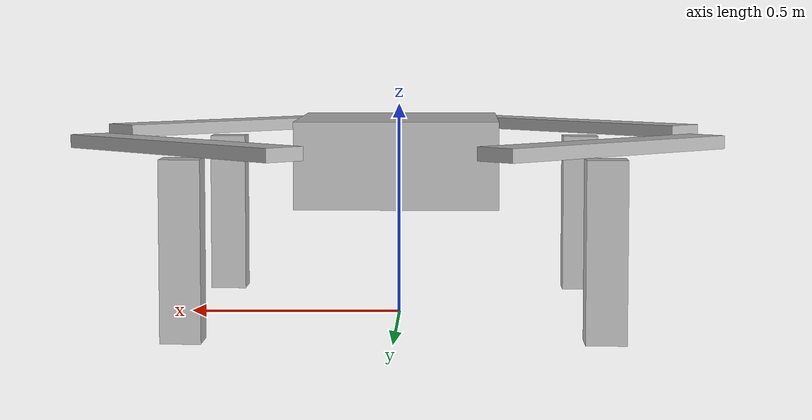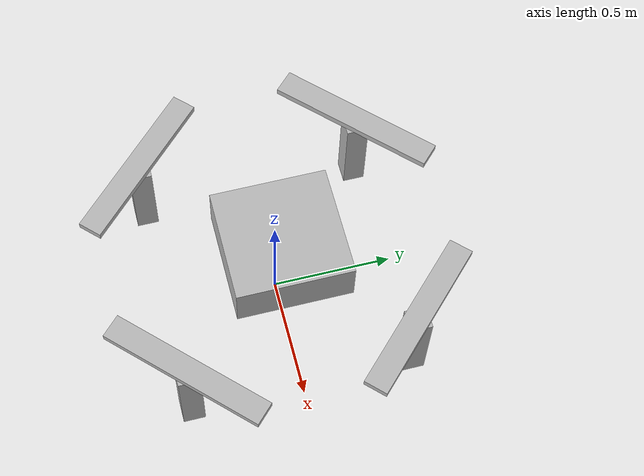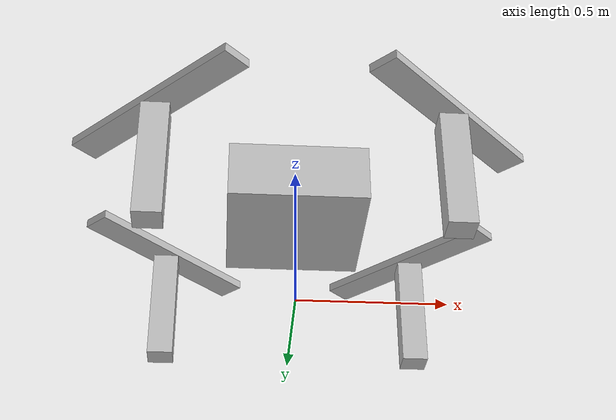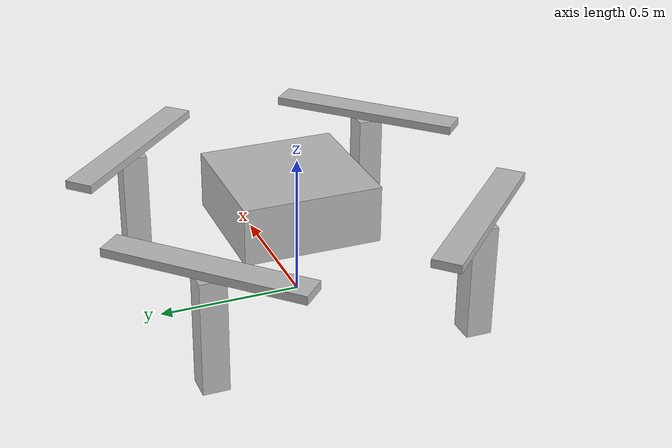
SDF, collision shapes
<?xml version="1.0"?>
<sdf version="1.6">
  <model name="edrone">
    <static>0</static>

<!-- ***************************** Links *********************************** -->

    <link name="base_frame">
      <visual name="visual">
        <geometry>
          <mesh><uri>model://edrone/meshes/edrone.obj</uri></mesh>
        </geometry>
      </visual>
      <collision name="base_collision">
        <pose>0 0.028 0.37 0 0 0</pose><geometry><box><size>0.466 0.48 0.2</size></box></geometry>
      </collision>
      <collision name="stand_1">
      	<pose>0.46 0.46 0.2 0 0 0</pose> <geometry><box><size>0.09 0.09 0.4</size></box> </geometry>
      </collision>
      <collision name="stand_2">
      	<pose>0.46 -0.46 0.2 0 0 0</pose> <geometry><box><size>0.09 0.09 0.4</size></box> </geometry>
      </collision>
      <collision name="stand_3">
      	<pose>-0.46 -0.46 0.2 0 0 0</pose> <geometry><box><size>0.09 0.09 0.4</size></box> </geometry>
      </collision>
      <collision name="stand_4">
      	<pose>-0.46 0.46 0.2 0 0 0</pose> <geometry><box><size>0.09 0.09 0.4</size></box> </geometry>
      </collision>
      <inertial>
        <mass>1</mass>
        <inertia>
          <ixx>0.08666</ixx><ixy>0</ixy><ixz>0</ixz><iyy>0.08666</iyy><iyz>0</iyz><izz>0.16666</izz>
        </inertia>
        <pose>0 0 0.35 0 0 0</pose>
      </inertial>
      <sensor type="camera" name="camera">
        <pose>0 0.35 0.38 0 1.5707 1.5707</pose>
        <update_rate>30.0</update_rate>
        <camera name="head">
          <horizontal_fov>1.3962634</horizontal_fov>
          <image>
            <width>400</width>
            <height>400</height>
            <format>R8G8B8</format>
          </image>
          <clip>
            <near>0.40</near>
            <far>300</far>
          </clip>
        </camera>
        <plugin name="camera_plugin" filename="libgazebo_ros_camera.so">
          <alwaysOn>true</alwaysOn>
          <updateRate>30.0</updateRate>
          <cameraName>camera</cameraName>
          <imageTopicName>image_raw</imageTopicName>
          <cameraInfoTopicName>camera_info</cameraInfoTopicName>
          <frameName>camera_link</frameName>
          <hackBaseline>0.07</hackBaseline>
          <distortionK1>0.0</distortionK1>
          <distortionK2>0.0</distortionK2>
          <distortionK3>0.0</distortionK3>
          <distortionT1>0.0</distortionT1>
          <distortionT2>0.0</distortionT2>
          <robotNamespace>edrone</robotNamespace>
          <tf_prefix_>edrone</tf_prefix_>
        </plugin>
        <visualize>false</visualize>
      </sensor>
      <sensor name="range_finder_top" type="ray">
        <pose>0 0 0.5 3.1415 0 -1.57</pose>
        <ray>
          <scan>
            <horizontal>
              <samples>5</samples>
              <resolution>1</resolution>
              <min_angle>-3.1415</min_angle>
              <max_angle>3.1415</max_angle>
            </horizontal>
          </scan>
          <range>
            <min>0.06</min>
            <max>25</max>
            <resolution>0.01</resolution>
          </range>
          <noise>
            <type>gaussian</type>
            <mean>0.0</mean>
            <stddev>0.01</stddev>
          </noise>
        </ray>
        <plugin name="lidar_plugin" filename="libgazebo_ros_laser.so">
          <robotNamespace>edrone</robotNamespace>
          <topicName>range_finder_top</topicName>
          <tf_prefix_>edrone</tf_prefix_>
          <frameName>/world</frameName>
        </plugin>
        <always_on>1</always_on>
        <update_rate>20</update_rate>
        <visualize>false</visualize>
      </sensor>
      <sensor name="range_finder_bottom" type="ray">
        <pose>0 0.46 0.38 0 1.5707 1.5707</pose>
        <ray>
          <scan>
            <horizontal>
              <samples>1</samples>
              <resolution>1</resolution>
              <min_angle>-0</min_angle>
              <max_angle>0</max_angle>
            </horizontal>
          </scan>
          <range>
            <min>0.06</min>
            <max>150</max>
            <resolution>0.01</resolution>
          </range>
          <noise>
            <type>gaussian</type>
            <mean>0.0</mean>
            <stddev>0.01</stddev>
          </noise>
        </ray>
        <plugin name="lidar_plugin" filename="libgazebo_ros_laser.so">
          <robotNamespace>edrone</robotNamespace>
          <topicName>range_finder_bottom</topicName>
          <tf_prefix_>edrone</tf_prefix_>
          <frameName>/world</frameName>
        </plugin>
        <always_on>1</always_on>
        <update_rate>20</update_rate>
        <visualize>false</visualize>
      </sensor>
    </link>

    <link name="prop1">
    	<pose>0.46 0.46 0.41  0 0 -0.785398</pose>
    	<inertial>
        <mass>0.1</mass>
        <inertia><ixx>0.00001</ixx><ixy>0</ixy><ixz>0</ixz><iyy>0.001</iyy><iyz>0</iyz><izz>0.001</izz></inertia>
        <pose>0 0 0.015 0 0 0</pose>
      </inertial>
      <visual name="visual">
        <geometry>
          <mesh><uri>model://edrone/meshes/prop_ccw.dae</uri></mesh>
        </geometry>
      </visual>
      <collision name="collision">
        <pose>0 0 0.015 0 0 0</pose>
        <geometry>
          <box><size>0.696 0.1 0.03</size></box>
        </geometry>
      </collision>
    </link>

    <link name="prop2">
    	<pose>0.46 -0.46 0.41  0 0 0.785398</pose>
    	<inertial>
        <mass>0.1</mass>
        <inertia><ixx>0.00001</ixx><ixy>0</ixy><ixz>0</ixz><iyy>0.001</iyy><iyz>0</iyz><izz>0.001</izz></inertia>
        <pose>0 0 0.015 0 0 0</pose>
      </inertial>
      <visual name="visual">
        <geometry>
          <mesh><uri>model://edrone/meshes/prop.dae</uri></mesh>
        </geometry>
      </visual>
      <collision name="collision">
        <pose>0 0 0.015 0 0 0</pose>
        <geometry>
          <box><size>0.696 0.1 0.03</size></box>
        </geometry>
      </collision>
    </link>

    <link name="prop3">
    	<pose>-0.46 -0.46 0.41  0 0 -0.785398</pose>
    	<inertial>
        <mass>0.1</mass>
        <inertia><ixx>0.00001</ixx><ixy>0</ixy><ixz>0</ixz><iyy>0.001</iyy><iyz>0</iyz><izz>0.001</izz></inertia>
        <pose>0 0 0.015 0 0 0</pose>
      </inertial>
      <visual name="visual">
        <geometry>
          <mesh><uri>model://edrone/meshes/prop_ccw.dae</uri></mesh>
        </geometry>
      </visual>
      <collision name="collision">
        <pose>0 0 0.015 0 0 0</pose>
        <geometry>
          <box><size>0.696 0.1 0.03</size></box>
        </geometry>
      </collision>
    </link>

    <link name="prop4">
    	<pose>-0.46 0.46 0.41  0 0 0.785398</pose>
    	<inertial>
    		<mass>0.1</mass>
    		<inertia><ixx>0.00001</ixx><ixy>0</ixy><ixz>0</ixz><iyy>0.001</iyy><iyz>0</iyz><izz>0.001</izz></inertia>
        <pose>0 0 0.015 0 0 0</pose>
    	</inertial>
      <visual name="visual">
        <geometry>
          <mesh><uri>model://edrone/meshes/prop.dae</uri></mesh>
        </geometry>
      </visual>
      <collision name="collision">
        <pose>0 0 0.015 0 0 0</pose>
        <geometry>
          <box><size>0.696 0.1 0.03</size></box>
        </geometry>
      </collision>
    </link>

    <link name="imu">
      <pose>0 0 0.3 0 0 0</pose>
      <inertial>
        <mass>0.01</mass>
        <inertia>
          <ixx>2.1733e-6</ixx><ixy>0</ixy><ixz>0</ixz><iyy>2.1733e-6</iyy><iyz>0</iyz><izz>1.8e-7</izz>
        </inertia>
      </inertial>
      <visual name="visual">
          <geometry>
              <box><size>0.01 0.01 0.01</size></box>
          </geometry>
      </visual>
      <collision name="collision">
        <geometry>
              <box><size>0.01 0.01 0.01</size></box>
        </geometry>
      </collision>
    </link>

    <link name="gps">
      <pose>0 0 0.31 0 0 0</pose>
      <inertial>
        <mass>0.01</mass>
        <inertia>
          <ixx>2.1733e-6</ixx><ixy>0</ixy><ixz>0</ixz><iyy>2.1733e-6</iyy><iyz>0</iyz><izz>1.8e-7</izz>
        </inertia>
      </inertial>
      <visual name="visual">
          <geometry>
              <box> <size>0.01 0.01 0.01</size></box>
          </geometry>
      </visual>
      <collision name="collision">
        <geometry>
              <box> <size>0.01 0.01 0.01</size></box>
          </geometry>
      </collision>
    </link>

<!-- ************************** Joints ******************************** -->

    <joint name="prop1_joint" type="revolute">
      <parent>base_frame</parent>
      <child>prop1</child>
      <pose>0 0 0  0 0 0</pose>
      <axis>
        <xyz>0 0 1</xyz>
      </axis>
    </joint>

   	<joint name="prop2_joint" type="revolute">
      <parent>base_frame</parent>
      <child>prop2</child>
      <pose>0 0 0  0 0 0</pose>
      <axis>
        <xyz>0 0 -1</xyz>
      </axis>
   	</joint>

   	<joint name="prop3_joint" type="revolute">
      <parent>base_frame</parent>
      <child>prop3</child>
      <pose>0 0 0  0 0 0</pose>
      <axis>
        <xyz>0 0 1</xyz>
      </axis>
   	</joint>

   	<joint name="prop4_joint" type="revolute">
      <parent>base_frame</parent>
      <child>prop4</child>
      <pose>0 0 0  0 0 0</pose>
      <axis>
        <xyz>0 0 -1</xyz>
      </axis>
   	</joint>

    <joint name="imu_joint" type="fixed">
      <parent>base_frame</parent>
      <child>imu</child>
      <pose>0 0 0 0 0 0</pose>
    </joint>

    <joint name="gps_joint" type="fixed">
      <parent>base_frame</parent>
      <child>gps</child>
      <pose>0 0 0 0 0 0</pose>
    </joint>

<!-- ****************************** Plugins *********************************** -->

    <plugin name="imu_plugin" filename="libgazebo_ros_imu.so">
      <updateRate>60</updateRate>
      <alwaysOn>true</alwaysOn>
      <bodyName>imu</bodyName>
      <frameName>imu</frameName>
      <topicName>/edrone/imu/data</topicName>
      <serviceName>imu_service</serviceName>
      <gaussianNoise>0.0</gaussianNoise>
      <updateRate>20.0</updateRate>
      <xyzOffset>0 0 0</xyzOffset>
      <rpyOffset>0 0 0</rpyOffset>
    </plugin>

    <plugin name="gps_plugin" filename="libgazebo_ros_gps.so">
      <updateRate>60</updateRate>
      <robotNamespace>edrone</robotNamespace>
      <bodyName>gps</bodyName>
      <referenceLatitude>19</referenceLatitude>
      <referenceLongitude>72</referenceLongitude>
      <referenceHeading>0</referenceHeading>
      <referenceAltitude>0</referenceAltitude>
      <topicName>gps</topicName>
      <velocityTopicName>gps_velocity</velocityTopicName>
    </plugin>

    <plugin name="gazebo_edrone_propulsion" filename="libgazebo_edrone_propulsion.so">
      <namespace_model>/edrone</namespace_model>
      <activate_pid_control>yes</activate_pid_control>
      <prop_kp> 1 </prop_kp>
      <prop_ki> 0 </prop_ki>
      <prop_kd> 0.0 </prop_kd>
      <robotNamespace>edrone</robotNamespace>
      <bodyName_1>prop1</bodyName_1>
      <bodyName_2>prop2</bodyName_2>
      <bodyName_3>prop3</bodyName_3>
      <bodyName_4>prop4</bodyName_4>
      <topicName>pwm</topicName>
    </plugin>

  </model>
</sdf>
